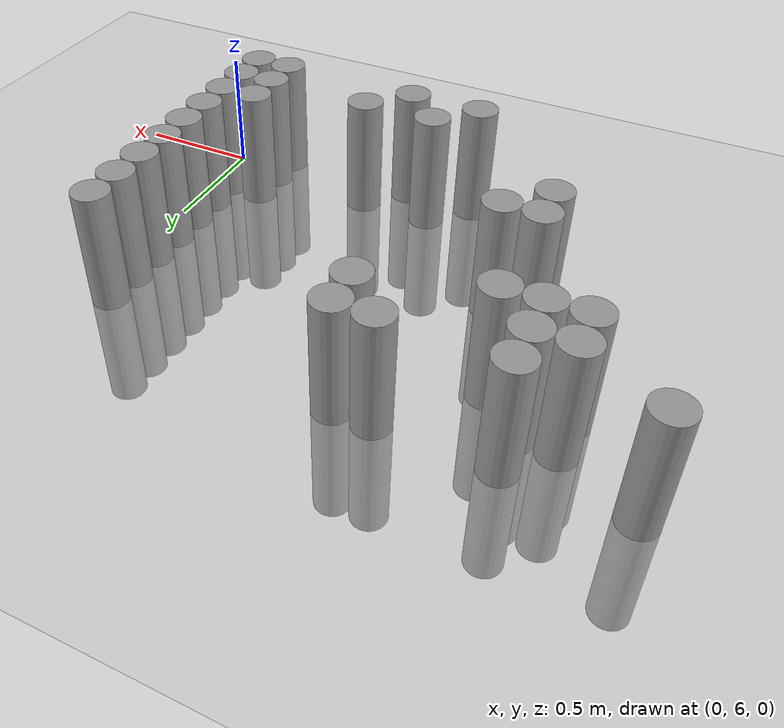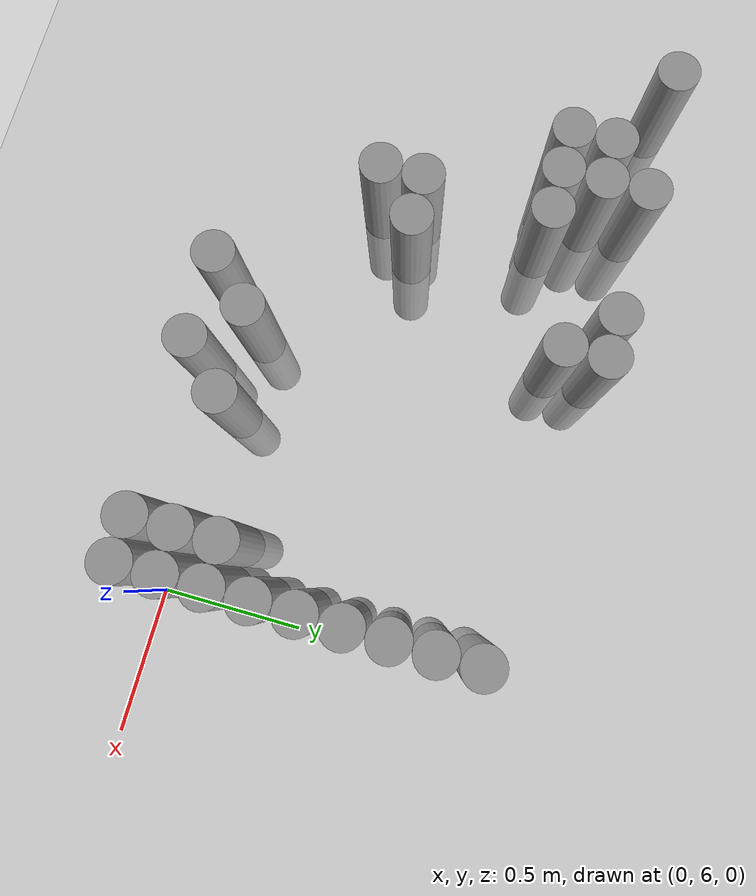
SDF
<sdf version="1.6">
 <world name="default">
  <model name="ground_plane">
   <static>1</static>
   <static>1</static>
   <link name="link">
    <collision name="collision">
     <geometry><plane><normal>0 0 1</normal><size>100 100</size></plane></geometry>
     <surface><friction><ode><mu>100</mu><mu2>50</mu2></ode></friction></surface>
    </collision>
    <visual name="visual">
     <cast_shadows>0</cast_shadows>
     <geometry><plane><normal>0 0 1</normal><size>100 100</size></plane></geometry>
     <material>
      <script><uri>file://media/materials/scripts/gazebo.material</uri><name>Gazebo/Grey</name></script>
     </material>
    </visual>
   </link>
  </model>
  <model name="unit_cylinder_162">
   <static>1</static>
   <pose>-2.175000 7.275000 0.000000 0.000000 0.000000 0.000000</pose>
   <link name="link">
    <inertial>
     <mass>1</mass>
     <inertia><ixx>0.145833</ixx><ixy>0</ixy><ixz>0</ixz><iyy>0.145833</iyy><iyz>0</iyz><izz>0.125</izz></inertia>
    </inertial>
    <collision name="collision">
     <geometry><cylinder><radius>0.075000</radius><length>1</length></cylinder></geometry>
    </collision>
    <visual name="visual">
     <geometry><cylinder><radius>0.075000</radius><length>1</length></cylinder></geometry>
     <material>
      <script><name>Gazebo/Grey</name><uri>file://media/materials/scripts/gazebo.material</uri></script>
     </material>
    </visual>
   </link>
  </model>
  <model name="unit_cylinder_168">
   <static>1</static>
   <pose>-1.875000 6.975000 0.000000 0.000000 0.000000 0.000000</pose>
   <link name="link">
    <inertial>
     <mass>1</mass>
     <inertia><ixx>0.145833</ixx><ixy>0</ixy><ixz>0</ixz><iyy>0.145833</iyy><iyz>0</iyz><izz>0.125</izz></inertia>
    </inertial>
    <collision name="collision">
     <geometry><cylinder><radius>0.075000</radius><length>1</length></cylinder></geometry>
    </collision>
    <visual name="visual">
     <geometry><cylinder><radius>0.075000</radius><length>1</length></cylinder></geometry>
     <material>
      <script><name>Gazebo/Grey</name><uri>file://media/materials/scripts/gazebo.material</uri></script>
     </material>
    </visual>
   </link>
  </model>
  <model name="unit_cylinder_169">
   <static>1</static>
   <pose>-1.875000 7.125000 0.000000 0.000000 0.000000 0.000000</pose>
   <link name="link">
    <inertial>
     <mass>1</mass>
     <inertia><ixx>0.145833</ixx><ixy>0</ixy><ixz>0</ixz><iyy>0.145833</iyy><iyz>0</iyz><izz>0.125</izz></inertia>
    </inertial>
    <collision name="collision">
     <geometry><cylinder><radius>0.075000</radius><length>1</length></cylinder></geometry>
    </collision>
    <visual name="visual">
     <geometry><cylinder><radius>0.075000</radius><length>1</length></cylinder></geometry>
     <material>
      <script><name>Gazebo/Grey</name><uri>file://media/materials/scripts/gazebo.material</uri></script>
     </material>
    </visual>
   </link>
  </model>
  <model name="unit_cylinder_170">
   <static>1</static>
   <pose>-1.725000 6.975000 0.000000 0.000000 0.000000 0.000000</pose>
   <link name="link">
    <inertial>
     <mass>1</mass>
     <inertia><ixx>0.145833</ixx><ixy>0</ixy><ixz>0</ixz><iyy>0.145833</iyy><iyz>0</iyz><izz>0.125</izz></inertia>
    </inertial>
    <collision name="collision">
     <geometry><cylinder><radius>0.075000</radius><length>1</length></cylinder></geometry>
    </collision>
    <visual name="visual">
     <geometry><cylinder><radius>0.075000</radius><length>1</length></cylinder></geometry>
     <material>
      <script><name>Gazebo/Grey</name><uri>file://media/materials/scripts/gazebo.material</uri></script>
     </material>
    </visual>
   </link>
  </model>
  <model name="unit_cylinder_171">
   <static>1</static>
   <pose>-1.725000 7.125000 0.000000 0.000000 0.000000 0.000000</pose>
   <link name="link">
    <inertial>
     <mass>1</mass>
     <inertia><ixx>0.145833</ixx><ixy>0</ixy><ixz>0</ixz><iyy>0.145833</iyy><iyz>0</iyz><izz>0.125</izz></inertia>
    </inertial>
    <collision name="collision">
     <geometry><cylinder><radius>0.075000</radius><length>1</length></cylinder></geometry>
    </collision>
    <visual name="visual">
     <geometry><cylinder><radius>0.075000</radius><length>1</length></cylinder></geometry>
     <material>
      <script><name>Gazebo/Grey</name><uri>file://media/materials/scripts/gazebo.material</uri></script>
     </material>
    </visual>
   </link>
  </model>
  <model name="unit_cylinder_172">
   <static>1</static>
   <pose>-1.725000 7.275000 0.000000 0.000000 0.000000 0.000000</pose>
   <link name="link">
    <inertial>
     <mass>1</mass>
     <inertia><ixx>0.145833</ixx><ixy>0</ixy><ixz>0</ixz><iyy>0.145833</iyy><iyz>0</iyz><izz>0.125</izz></inertia>
    </inertial>
    <collision name="collision">
     <geometry><cylinder><radius>0.075000</radius><length>1</length></cylinder></geometry>
    </collision>
    <visual name="visual">
     <geometry><cylinder><radius>0.075000</radius><length>1</length></cylinder></geometry>
     <material>
      <script><name>Gazebo/Grey</name><uri>file://media/materials/scripts/gazebo.material</uri></script>
     </material>
    </visual>
   </link>
  </model>
  <model name="unit_cylinder_173">
   <static>1</static>
   <pose>-1.575000 6.375000 0.000000 0.000000 0.000000 0.000000</pose>
   <link name="link">
    <inertial>
     <mass>1</mass>
     <inertia><ixx>0.145833</ixx><ixy>0</ixy><ixz>0</ixz><iyy>0.145833</iyy><iyz>0</iyz><izz>0.125</izz></inertia>
    </inertial>
    <collision name="collision">
     <geometry><cylinder><radius>0.075000</radius><length>1</length></cylinder></geometry>
    </collision>
    <visual name="visual">
     <geometry><cylinder><radius>0.075000</radius><length>1</length></cylinder></geometry>
     <material>
      <script><name>Gazebo/Grey</name><uri>file://media/materials/scripts/gazebo.material</uri></script>
     </material>
    </visual>
   </link>
  </model>
  <model name="unit_cylinder_174">
   <static>1</static>
   <pose>-1.575000 6.525000 0.000000 0.000000 0.000000 0.000000</pose>
   <link name="link">
    <inertial>
     <mass>1</mass>
     <inertia><ixx>0.145833</ixx><ixy>0</ixy><ixz>0</ixz><iyy>0.145833</iyy><iyz>0</iyz><izz>0.125</izz></inertia>
    </inertial>
    <collision name="collision">
     <geometry><cylinder><radius>0.075000</radius><length>1</length></cylinder></geometry>
    </collision>
    <visual name="visual">
     <geometry><cylinder><radius>0.075000</radius><length>1</length></cylinder></geometry>
     <material>
      <script><name>Gazebo/Grey</name><uri>file://media/materials/scripts/gazebo.material</uri></script>
     </material>
    </visual>
   </link>
  </model>
  <model name="unit_cylinder_175">
   <static>1</static>
   <pose>-1.575000 6.975000 0.000000 0.000000 0.000000 0.000000</pose>
   <link name="link">
    <inertial>
     <mass>1</mass>
     <inertia><ixx>0.145833</ixx><ixy>0</ixy><ixz>0</ixz><iyy>0.145833</iyy><iyz>0</iyz><izz>0.125</izz></inertia>
    </inertial>
    <collision name="collision">
     <geometry><cylinder><radius>0.075000</radius><length>1</length></cylinder></geometry>
    </collision>
    <visual name="visual">
     <geometry><cylinder><radius>0.075000</radius><length>1</length></cylinder></geometry>
     <material>
      <script><name>Gazebo/Grey</name><uri>file://media/materials/scripts/gazebo.material</uri></script>
     </material>
    </visual>
   </link>
  </model>
  <model name="unit_cylinder_176">
   <static>1</static>
   <pose>-1.425000 6.525000 0.000000 0.000000 0.000000 0.000000</pose>
   <link name="link">
    <inertial>
     <mass>1</mass>
     <inertia><ixx>0.145833</ixx><ixy>0</ixy><ixz>0</ixz><iyy>0.145833</iyy><iyz>0</iyz><izz>0.125</izz></inertia>
    </inertial>
    <collision name="collision">
     <geometry><cylinder><radius>0.075000</radius><length>1</length></cylinder></geometry>
    </collision>
    <visual name="visual">
     <geometry><cylinder><radius>0.075000</radius><length>1</length></cylinder></geometry>
     <material>
      <script><name>Gazebo/Grey</name><uri>file://media/materials/scripts/gazebo.material</uri></script>
     </material>
    </visual>
   </link>
  </model>
  <model name="unit_cylinder_178">
   <static>1</static>
   <pose>-1.275000 7.275000 0.000000 0.000000 0.000000 0.000000</pose>
   <link name="link">
    <inertial>
     <mass>1</mass>
     <inertia><ixx>0.145833</ixx><ixy>0</ixy><ixz>0</ixz><iyy>0.145833</iyy><iyz>0</iyz><izz>0.125</izz></inertia>
    </inertial>
    <collision name="collision">
     <geometry><cylinder><radius>0.075000</radius><length>1</length></cylinder></geometry>
    </collision>
    <visual name="visual">
     <geometry><cylinder><radius>0.075000</radius><length>1</length></cylinder></geometry>
     <material>
      <script><name>Gazebo/Grey</name><uri>file://media/materials/scripts/gazebo.material</uri></script>
     </material>
    </visual>
   </link>
  </model>
  <model name="unit_cylinder_179">
   <static>1</static>
   <pose>-1.125000 5.925000 0.000000 0.000000 0.000000 0.000000</pose>
   <link name="link">
    <inertial>
     <mass>1</mass>
     <inertia><ixx>0.145833</ixx><ixy>0</ixy><ixz>0</ixz><iyy>0.145833</iyy><iyz>0</iyz><izz>0.125</izz></inertia>
    </inertial>
    <collision name="collision">
     <geometry><cylinder><radius>0.075000</radius><length>1</length></cylinder></geometry>
    </collision>
    <visual name="visual">
     <geometry><cylinder><radius>0.075000</radius><length>1</length></cylinder></geometry>
     <material>
      <script><name>Gazebo/Grey</name><uri>file://media/materials/scripts/gazebo.material</uri></script>
     </material>
    </visual>
   </link>
  </model>
  <model name="unit_cylinder_180">
   <static>1</static>
   <pose>-1.125000 7.125000 0.000000 0.000000 0.000000 0.000000</pose>
   <link name="link">
    <inertial>
     <mass>1</mass>
     <inertia><ixx>0.145833</ixx><ixy>0</ixy><ixz>0</ixz><iyy>0.145833</iyy><iyz>0</iyz><izz>0.125</izz></inertia>
    </inertial>
    <collision name="collision">
     <geometry><cylinder><radius>0.075000</radius><length>1</length></cylinder></geometry>
    </collision>
    <visual name="visual">
     <geometry><cylinder><radius>0.075000</radius><length>1</length></cylinder></geometry>
     <material>
      <script><name>Gazebo/Grey</name><uri>file://media/materials/scripts/gazebo.material</uri></script>
     </material>
    </visual>
   </link>
  </model>
  <model name="unit_cylinder_181">
   <static>1</static>
   <pose>-1.125000 7.275000 0.000000 0.000000 0.000000 0.000000</pose>
   <link name="link">
    <inertial>
     <mass>1</mass>
     <inertia><ixx>0.145833</ixx><ixy>0</ixy><ixz>0</ixz><iyy>0.145833</iyy><iyz>0</iyz><izz>0.125</izz></inertia>
    </inertial>
    <collision name="collision">
     <geometry><cylinder><radius>0.075000</radius><length>1</length></cylinder></geometry>
    </collision>
    <visual name="visual">
     <geometry><cylinder><radius>0.075000</radius><length>1</length></cylinder></geometry>
     <material>
      <script><name>Gazebo/Grey</name><uri>file://media/materials/scripts/gazebo.material</uri></script>
     </material>
    </visual>
   </link>
  </model>
  <model name="unit_cylinder_183">
   <static>1</static>
   <pose>-0.975000 6.075000 0.000000 0.000000 0.000000 0.000000</pose>
   <link name="link">
    <inertial>
     <mass>1</mass>
     <inertia><ixx>0.145833</ixx><ixy>0</ixy><ixz>0</ixz><iyy>0.145833</iyy><iyz>0</iyz><izz>0.125</izz></inertia>
    </inertial>
    <collision name="collision">
     <geometry><cylinder><radius>0.075000</radius><length>1</length></cylinder></geometry>
    </collision>
    <visual name="visual">
     <geometry><cylinder><radius>0.075000</radius><length>1</length></cylinder></geometry>
     <material>
      <script><name>Gazebo/Grey</name><uri>file://media/materials/scripts/gazebo.material</uri></script>
     </material>
    </visual>
   </link>
  </model>
  <model name="unit_cylinder_187">
   <static>1</static>
   <pose>-0.825000 5.925000 0.000000 0.000000 0.000000 0.000000</pose>
   <link name="link">
    <inertial>
     <mass>1</mass>
     <inertia><ixx>0.145833</ixx><ixy>0</ixy><ixz>0</ixz><iyy>0.145833</iyy><iyz>0</iyz><izz>0.125</izz></inertia>
    </inertial>
    <collision name="collision">
     <geometry><cylinder><radius>0.075000</radius><length>1</length></cylinder></geometry>
    </collision>
    <visual name="visual">
     <geometry><cylinder><radius>0.075000</radius><length>1</length></cylinder></geometry>
     <material>
      <script><name>Gazebo/Grey</name><uri>file://media/materials/scripts/gazebo.material</uri></script>
     </material>
    </visual>
   </link>
  </model>
  <model name="unit_cylinder_190">
   <static>1</static>
   <pose>-0.675000 6.075000 0.000000 0.000000 0.000000 0.000000</pose>
   <link name="link">
    <inertial>
     <mass>1</mass>
     <inertia><ixx>0.145833</ixx><ixy>0</ixy><ixz>0</ixz><iyy>0.145833</iyy><iyz>0</iyz><izz>0.125</izz></inertia>
    </inertial>
    <collision name="collision">
     <geometry><cylinder><radius>0.075000</radius><length>1</length></cylinder></geometry>
    </collision>
    <visual name="visual">
     <geometry><cylinder><radius>0.075000</radius><length>1</length></cylinder></geometry>
     <material>
      <script><name>Gazebo/Grey</name><uri>file://media/materials/scripts/gazebo.material</uri></script>
     </material>
    </visual>
   </link>
  </model>
  <model name="unit_cylinder_195">
   <static>1</static>
   <pose>-0.225000 5.925000 0.000000 0.000000 0.000000 0.000000</pose>
   <link name="link">
    <inertial>
     <mass>1</mass>
     <inertia><ixx>0.145833</ixx><ixy>0</ixy><ixz>0</ixz><iyy>0.145833</iyy><iyz>0</iyz><izz>0.125</izz></inertia>
    </inertial>
    <collision name="collision">
     <geometry><cylinder><radius>0.075000</radius><length>1</length></cylinder></geometry>
    </collision>
    <visual name="visual">
     <geometry><cylinder><radius>0.075000</radius><length>1</length></cylinder></geometry>
     <material>
      <script><name>Gazebo/Grey</name><uri>file://media/materials/scripts/gazebo.material</uri></script>
     </material>
    </visual>
   </link>
  </model>
  <model name="unit_cylinder_196">
   <static>1</static>
   <pose>-0.225000 6.075000 0.000000 0.000000 0.000000 0.000000</pose>
   <link name="link">
    <inertial>
     <mass>1</mass>
     <inertia><ixx>0.145833</ixx><ixy>0</ixy><ixz>0</ixz><iyy>0.145833</iyy><iyz>0</iyz><izz>0.125</izz></inertia>
    </inertial>
    <collision name="collision">
     <geometry><cylinder><radius>0.075000</radius><length>1</length></cylinder></geometry>
    </collision>
    <visual name="visual">
     <geometry><cylinder><radius>0.075000</radius><length>1</length></cylinder></geometry>
     <material>
      <script><name>Gazebo/Grey</name><uri>file://media/materials/scripts/gazebo.material</uri></script>
     </material>
    </visual>
   </link>
  </model>
  <model name="unit_cylinder_197">
   <static>1</static>
   <pose>-0.225000 6.225000 0.000000 0.000000 0.000000 0.000000</pose>
   <link name="link">
    <inertial>
     <mass>1</mass>
     <inertia><ixx>0.145833</ixx><ixy>0</ixy><ixz>0</ixz><iyy>0.145833</iyy><iyz>0</iyz><izz>0.125</izz></inertia>
    </inertial>
    <collision name="collision">
     <geometry><cylinder><radius>0.075000</radius><length>1</length></cylinder></geometry>
    </collision>
    <visual name="visual">
     <geometry><cylinder><radius>0.075000</radius><length>1</length></cylinder></geometry>
     <material>
      <script><name>Gazebo/Grey</name><uri>file://media/materials/scripts/gazebo.material</uri></script>
     </material>
    </visual>
   </link>
  </model>
  <model name="unit_cylinder_205">
   <static>1</static>
   <pose>-0.075000 5.925000 0.000000 0.000000 0.000000 0.000000</pose>
   <link name="link">
    <inertial>
     <mass>1</mass>
     <inertia><ixx>0.145833</ixx><ixy>0</ixy><ixz>0</ixz><iyy>0.145833</iyy><iyz>0</iyz><izz>0.125</izz></inertia>
    </inertial>
    <collision name="collision">
     <geometry><cylinder><radius>0.075000</radius><length>1</length></cylinder></geometry>
    </collision>
    <visual name="visual">
     <geometry><cylinder><radius>0.075000</radius><length>1</length></cylinder></geometry>
     <material>
      <script><name>Gazebo/Grey</name><uri>file://media/materials/scripts/gazebo.material</uri></script>
     </material>
    </visual>
   </link>
  </model>
  <model name="unit_cylinder_206">
   <static>1</static>
   <pose>-0.075000 6.075000 0.000000 0.000000 0.000000 0.000000</pose>
   <link name="link">
    <inertial>
     <mass>1</mass>
     <inertia><ixx>0.145833</ixx><ixy>0</ixy><ixz>0</ixz><iyy>0.145833</iyy><iyz>0</iyz><izz>0.125</izz></inertia>
    </inertial>
    <collision name="collision">
     <geometry><cylinder><radius>0.075000</radius><length>1</length></cylinder></geometry>
    </collision>
    <visual name="visual">
     <geometry><cylinder><radius>0.075000</radius><length>1</length></cylinder></geometry>
     <material>
      <script><name>Gazebo/Grey</name><uri>file://media/materials/scripts/gazebo.material</uri></script>
     </material>
    </visual>
   </link>
  </model>
  <model name="unit_cylinder_207">
   <static>1</static>
   <pose>-0.075000 6.225000 0.000000 0.000000 0.000000 0.000000</pose>
   <link name="link">
    <inertial>
     <mass>1</mass>
     <inertia><ixx>0.145833</ixx><ixy>0</ixy><ixz>0</ixz><iyy>0.145833</iyy><iyz>0</iyz><izz>0.125</izz></inertia>
    </inertial>
    <collision name="collision">
     <geometry><cylinder><radius>0.075000</radius><length>1</length></cylinder></geometry>
    </collision>
    <visual name="visual">
     <geometry><cylinder><radius>0.075000</radius><length>1</length></cylinder></geometry>
     <material>
      <script><name>Gazebo/Grey</name><uri>file://media/materials/scripts/gazebo.material</uri></script>
     </material>
    </visual>
   </link>
  </model>
  <model name="unit_cylinder_208">
   <static>1</static>
   <pose>-0.075000 6.375000 0.000000 0.000000 0.000000 0.000000</pose>
   <link name="link">
    <inertial>
     <mass>1</mass>
     <inertia><ixx>0.145833</ixx><ixy>0</ixy><ixz>0</ixz><iyy>0.145833</iyy><iyz>0</iyz><izz>0.125</izz></inertia>
    </inertial>
    <collision name="collision">
     <geometry><cylinder><radius>0.075000</radius><length>1</length></cylinder></geometry>
    </collision>
    <visual name="visual">
     <geometry><cylinder><radius>0.075000</radius><length>1</length></cylinder></geometry>
     <material>
      <script><name>Gazebo/Grey</name><uri>file://media/materials/scripts/gazebo.material</uri></script>
     </material>
    </visual>
   </link>
  </model>
  <model name="unit_cylinder_209">
   <static>1</static>
   <pose>-0.075000 6.525000 0.000000 0.000000 0.000000 0.000000</pose>
   <link name="link">
    <inertial>
     <mass>1</mass>
     <inertia><ixx>0.145833</ixx><ixy>0</ixy><ixz>0</ixz><iyy>0.145833</iyy><iyz>0</iyz><izz>0.125</izz></inertia>
    </inertial>
    <collision name="collision">
     <geometry><cylinder><radius>0.075000</radius><length>1</length></cylinder></geometry>
    </collision>
    <visual name="visual">
     <geometry><cylinder><radius>0.075000</radius><length>1</length></cylinder></geometry>
     <material>
      <script><name>Gazebo/Grey</name><uri>file://media/materials/scripts/gazebo.material</uri></script>
     </material>
    </visual>
   </link>
  </model>
  <model name="unit_cylinder_210">
   <static>1</static>
   <pose>-0.075000 6.675000 0.000000 0.000000 0.000000 0.000000</pose>
   <link name="link">
    <inertial>
     <mass>1</mass>
     <inertia><ixx>0.145833</ixx><ixy>0</ixy><ixz>0</ixz><iyy>0.145833</iyy><iyz>0</iyz><izz>0.125</izz></inertia>
    </inertial>
    <collision name="collision">
     <geometry><cylinder><radius>0.075000</radius><length>1</length></cylinder></geometry>
    </collision>
    <visual name="visual">
     <geometry><cylinder><radius>0.075000</radius><length>1</length></cylinder></geometry>
     <material>
      <script><name>Gazebo/Grey</name><uri>file://media/materials/scripts/gazebo.material</uri></script>
     </material>
    </visual>
   </link>
  </model>
  <model name="unit_cylinder_211">
   <static>1</static>
   <pose>-0.075000 6.825000 0.000000 0.000000 0.000000 0.000000</pose>
   <link name="link">
    <inertial>
     <mass>1</mass>
     <inertia><ixx>0.145833</ixx><ixy>0</ixy><ixz>0</ixz><iyy>0.145833</iyy><iyz>0</iyz><izz>0.125</izz></inertia>
    </inertial>
    <collision name="collision">
     <geometry><cylinder><radius>0.075000</radius><length>1</length></cylinder></geometry>
    </collision>
    <visual name="visual">
     <geometry><cylinder><radius>0.075000</radius><length>1</length></cylinder></geometry>
     <material>
      <script><name>Gazebo/Grey</name><uri>file://media/materials/scripts/gazebo.material</uri></script>
     </material>
    </visual>
   </link>
  </model>
  <model name="unit_cylinder_212">
   <static>1</static>
   <pose>-0.075000 6.975000 0.000000 0.000000 0.000000 0.000000</pose>
   <link name="link">
    <inertial>
     <mass>1</mass>
     <inertia><ixx>0.145833</ixx><ixy>0</ixy><ixz>0</ixz><iyy>0.145833</iyy><iyz>0</iyz><izz>0.125</izz></inertia>
    </inertial>
    <collision name="collision">
     <geometry><cylinder><radius>0.075000</radius><length>1</length></cylinder></geometry>
    </collision>
    <visual name="visual">
     <geometry><cylinder><radius>0.075000</radius><length>1</length></cylinder></geometry>
     <material>
      <script><name>Gazebo/Grey</name><uri>file://media/materials/scripts/gazebo.material</uri></script>
     </material>
    </visual>
   </link>
  </model>
  <model name="unit_cylinder_213">
   <static>1</static>
   <pose>-0.075000 7.125000 0.000000 0.000000 0.000000 0.000000</pose>
   <link name="link">
    <inertial>
     <mass>1</mass>
     <inertia><ixx>0.145833</ixx><ixy>0</ixy><ixz>0</ixz><iyy>0.145833</iyy><iyz>0</iyz><izz>0.125</izz></inertia>
    </inertial>
    <collision name="collision">
     <geometry><cylinder><radius>0.075000</radius><length>1</length></cylinder></geometry>
    </collision>
    <visual name="visual">
     <geometry><cylinder><radius>0.075000</radius><length>1</length></cylinder></geometry>
     <material>
      <script><name>Gazebo/Grey</name><uri>file://media/materials/scripts/gazebo.material</uri></script>
     </material>
    </visual>
   </link>
  </model>
 </world>
</sdf>
